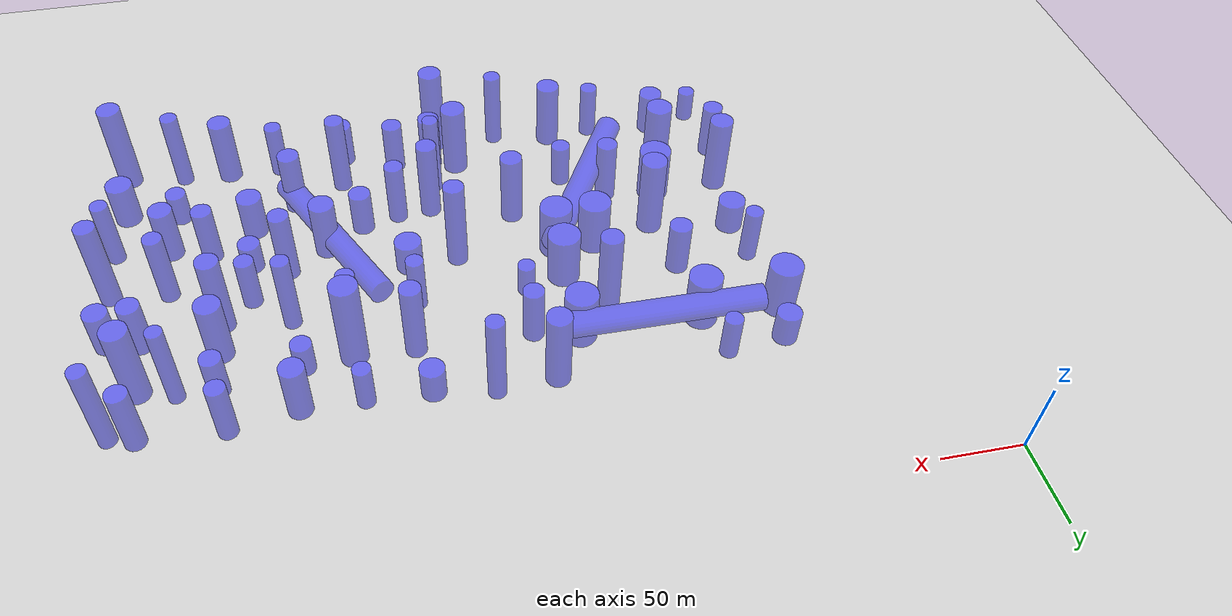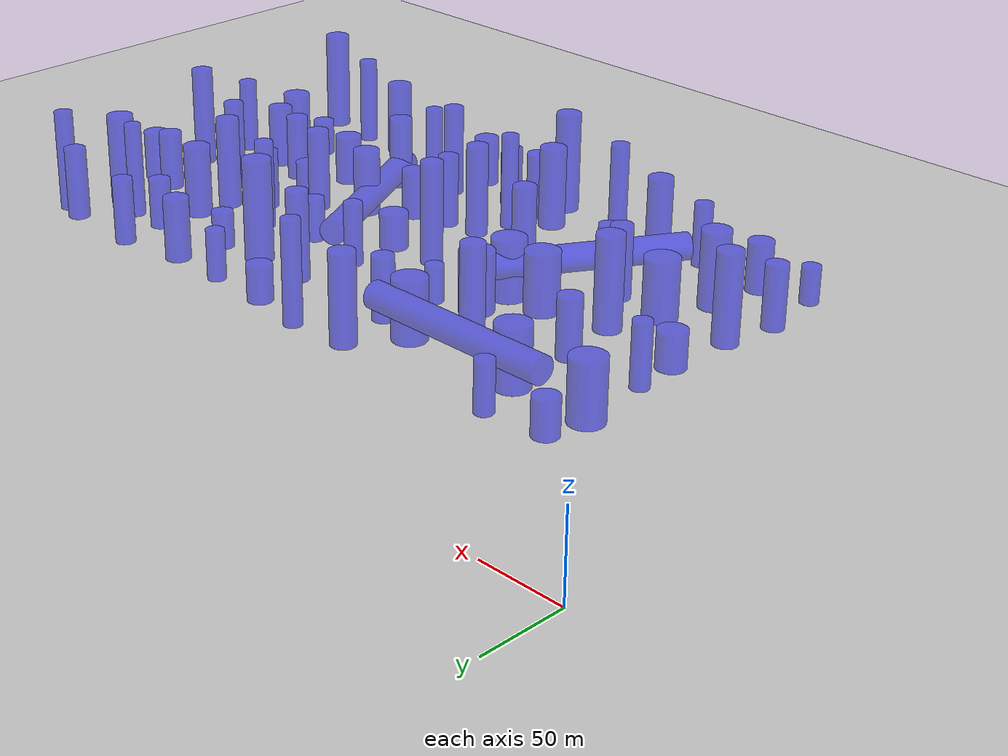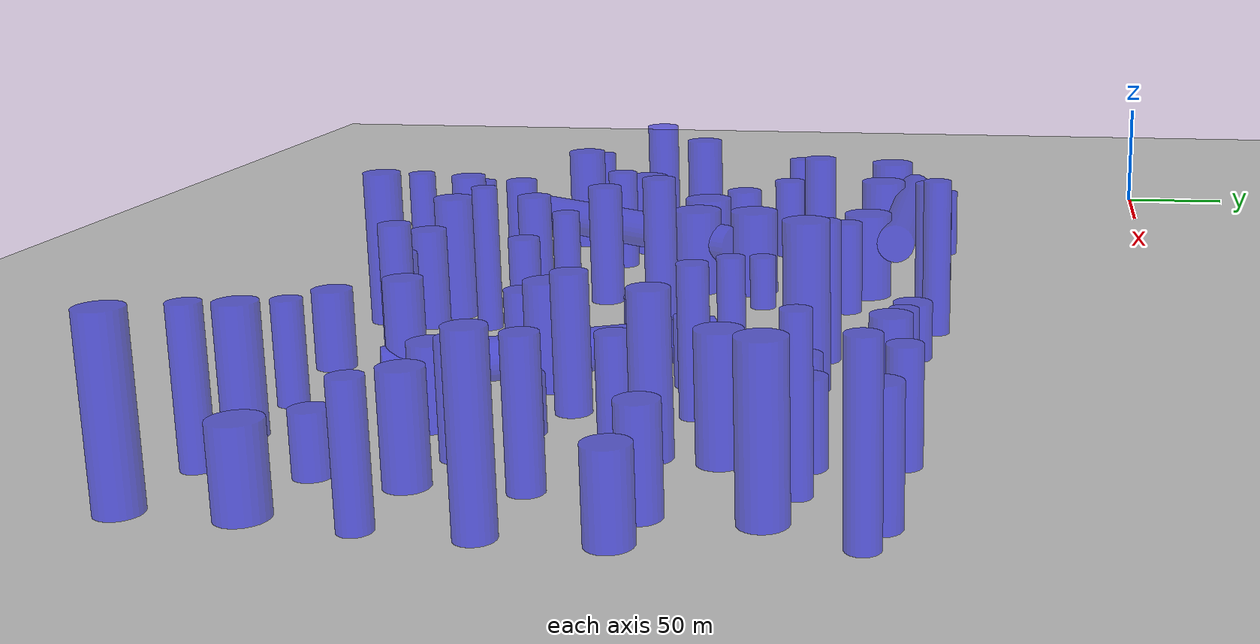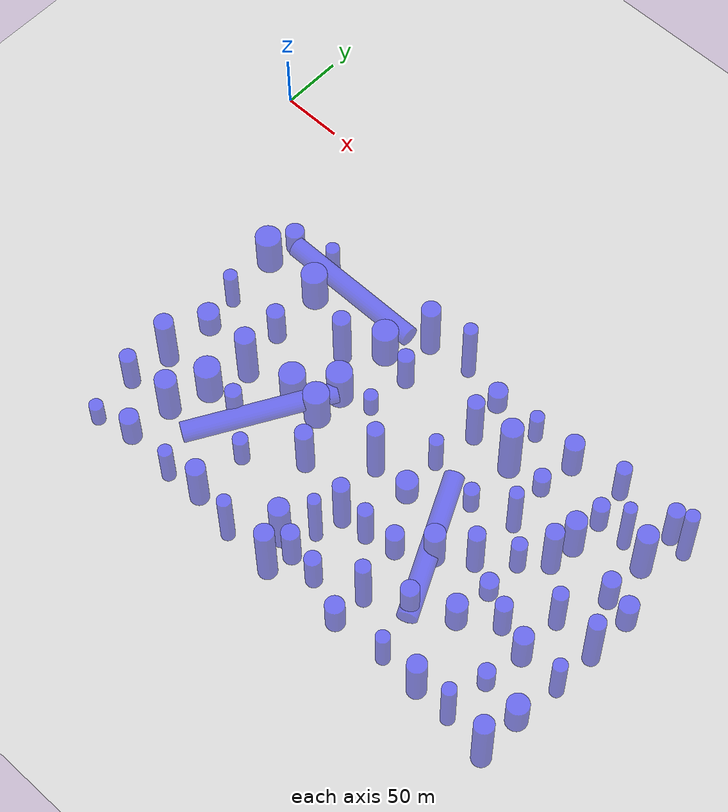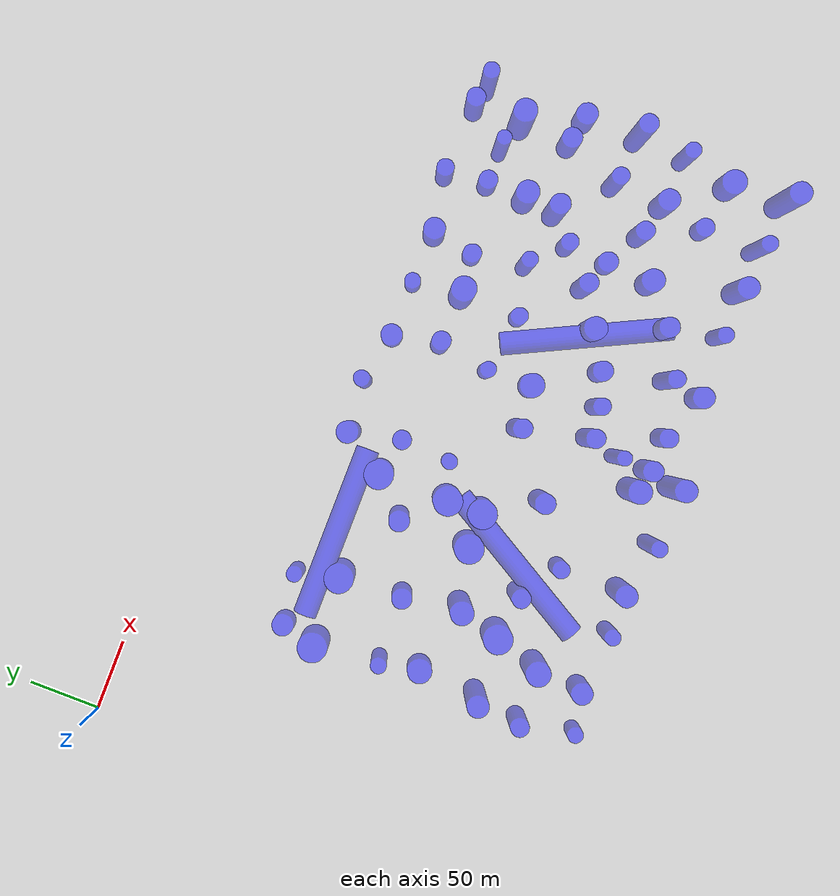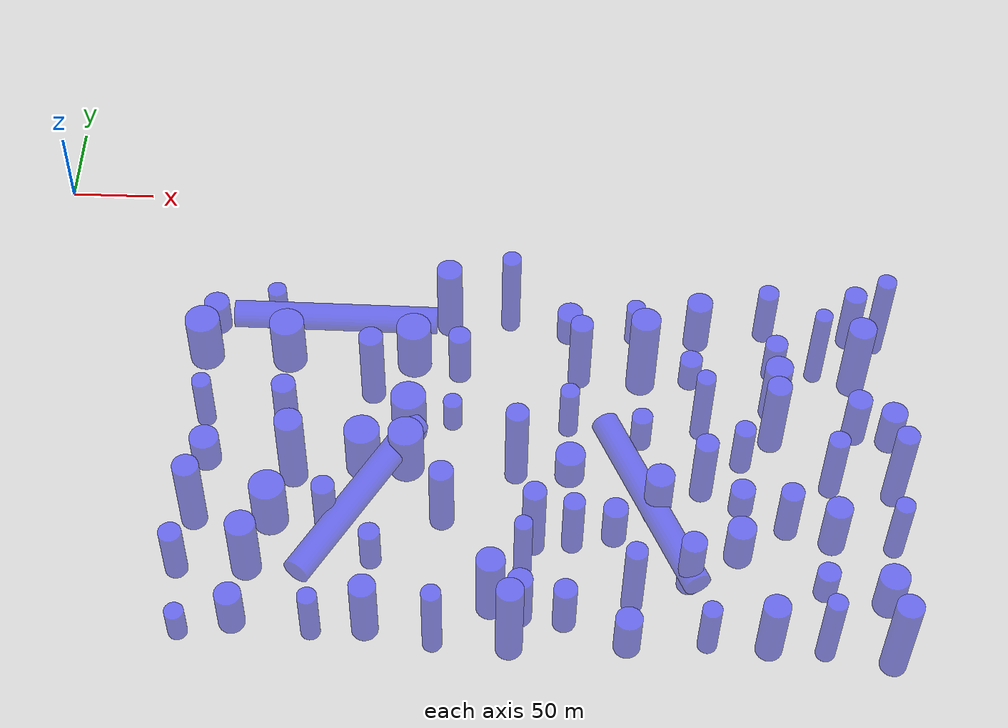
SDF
<sdf version="1.6">
 <world name="default">
  <model name="ground_plane">
   <static>1</static>
   <link name="link">
    <collision name="collision">
     <geometry><plane><normal>0 0 1</normal><size>1400.0 1400.0</size></plane></geometry>
     <surface><friction><ode><mu>100</mu><mu2>50</mu2></ode></friction></surface>
    </collision>
    <visual name="visual">
     <cast_shadows>0</cast_shadows>
     <geometry><plane><normal>0 0 1</normal><size>1400.0 1400.0</size></plane></geometry>
     <material>
      <script><uri>file://media/materials/scripts/gazebo.material</uri><name>Gazebo/Grey</name></script>
     </material>
    </visual>
   </link>
  </model>
  <model name="unit_cylinder_clone_2">
   <static>true</static>
   <pose>100.133 -125.017 18.13715 0 0 0</pose>
   <link name="link">
    <inertial>
     <mass>1</mass>
     <inertia><ixx>0.145833</ixx><ixy>0</ixy><ixz>0</ixz><iyy>0.145833</iyy><iyz>0</iyz><izz>0.125</izz></inertia>
    </inertial>
    <collision name="collision">
     <geometry><cylinder><radius>10.1458</radius><length>36.2743</length></cylinder></geometry>
    </collision>
    <visual name="visual">
     <geometry><cylinder><radius>10.1458</radius><length>36.2743</length></cylinder></geometry>
     <material><ambient>0 0 1 1</ambient><diffuse>0 0 1 1</diffuse></material>
     <transparency>0.5</transparency>
    </visual>
   </link>
  </model>
  <model name="unit_cylinder_clone_3_clone">
   <static>true</static>
   <pose>225.023 -125.025 18.13715 0 0 0</pose>
   <link name="link">
    <inertial>
     <mass>1</mass>
     <inertia><ixx>0.145833</ixx><ixy>0</ixy><ixz>0</ixz><iyy>0.145833</iyy><iyz>0</iyz><izz>0.125</izz></inertia>
    </inertial>
    <collision name="collision">
     <geometry><cylinder><radius>10.1458</radius><length>36.2743</length></cylinder></geometry>
    </collision>
    <visual name="visual">
     <geometry><cylinder><radius>10.1458</radius><length>36.2743</length></cylinder></geometry>
     <material><ambient>0 0 1 1</ambient><diffuse>0 0 1 1</diffuse></material>
     <transparency>0.5</transparency>
    </visual>
   </link>
  </model>
  <model name="unit_cylinder_clone_3_clone_0_clone">
   <static>true</static>
   <pose>150.023 -125.025 18.13715 0 0 0</pose>
   <link name="link">
    <inertial>
     <mass>1</mass>
     <inertia><ixx>0.145833</ixx><ixy>0</ixy><ixz>0</ixz><iyy>0.145833</iyy><iyz>0</iyz><izz>0.125</izz></inertia>
    </inertial>
    <collision name="collision">
     <geometry><cylinder><radius>10.1458</radius><length>36.2743</length></cylinder></geometry>
    </collision>
    <visual name="visual">
     <geometry><cylinder><radius>10.1458</radius><length>36.2743</length></cylinder></geometry>
     <material><ambient>0 0 1 1</ambient><diffuse>0 0 1 1</diffuse></material>
     <transparency>0.5</transparency>
    </visual>
   </link>
  </model>
  <model name="unit_cylinder_clone_3_clone_0_clone_0">
   <static>true</static>
   <pose>225.023 -200.025 18.13715 0 0 0</pose>
   <link name="link">
    <inertial>
     <mass>1</mass>
     <inertia><ixx>0.145833</ixx><ixy>0</ixy><ixz>0</ixz><iyy>0.145833</iyy><iyz>0</iyz><izz>0.125</izz></inertia>
    </inertial>
    <collision name="collision">
     <geometry><cylinder><radius>10.1458</radius><length>36.2743</length></cylinder></geometry>
    </collision>
    <visual name="visual">
     <geometry><cylinder><radius>10.1458</radius><length>36.2743</length></cylinder></geometry>
     <material><ambient>0 0 1 1</ambient><diffuse>0 0 1 1</diffuse></material>
     <transparency>0.5</transparency>
    </visual>
   </link>
  </model>
  <model name="unit_cylinder_clone_3_clone_0_clone_0_clone">
   <static>true</static>
   <pose>225.023 -175.025 18.13715 0 0 0</pose>
   <link name="link">
    <inertial>
     <mass>1</mass>
     <inertia><ixx>0.145833</ixx><ixy>0</ixy><ixz>0</ixz><iyy>0.145833</iyy><iyz>0</iyz><izz>0.125</izz></inertia>
    </inertial>
    <collision name="collision">
     <geometry><cylinder><radius>10.1458</radius><length>36.2743</length></cylinder></geometry>
    </collision>
    <visual name="visual">
     <geometry><cylinder><radius>10.1458</radius><length>36.2743</length></cylinder></geometry>
     <material><ambient>0 0 1 1</ambient><diffuse>0 0 1 1</diffuse></material>
     <transparency>0.5</transparency>
    </visual>
   </link>
  </model>
  <model name="unit_cylinder_clone_3_clone_0_clone_0_clone_clone">
   <static>true</static>
   <pose>200.023 -200.025 18.13715 0 0 0</pose>
   <link name="link">
    <inertial>
     <mass>1</mass>
     <inertia><ixx>0.145833</ixx><ixy>0</ixy><ixz>0</ixz><iyy>0.145833</iyy><iyz>0</iyz><izz>0.125</izz></inertia>
    </inertial>
    <collision name="collision">
     <geometry><cylinder><radius>10.1458</radius><length>36.2743</length></cylinder></geometry>
    </collision>
    <visual name="visual">
     <geometry><cylinder><radius>10.1458</radius><length>36.2743</length></cylinder></geometry>
     <material><ambient>0 0 1 1</ambient><diffuse>0 0 1 1</diffuse></material>
     <transparency>0.5</transparency>
    </visual>
   </link>
  </model>
  <model name="unit_cylinder_clone_3_clone_0_clone_1">
   <static>true</static>
   <pose>150.023 -240.025 18.13715 0 0 0</pose>
   <link name="link">
    <inertial>
     <mass>1</mass>
     <inertia><ixx>0.145833</ixx><ixy>0</ixy><ixz>0</ixz><iyy>0.145833</iyy><iyz>0</iyz><izz>0.125</izz></inertia>
    </inertial>
    <collision name="collision">
     <geometry><cylinder><radius>10.1458</radius><length>36.2743</length></cylinder></geometry>
    </collision>
    <visual name="visual">
     <geometry><cylinder><radius>10.1458</radius><length>36.2743</length></cylinder></geometry>
     <material><ambient>0 0 1 1</ambient><diffuse>0 0 1 1</diffuse></material>
     <transparency>0.5</transparency>
    </visual>
   </link>
  </model>
  <model name="static_obs22">
   <static>true</static>
   <pose>202.16 -148.57 28.0 0 0 0</pose>
   <link name="link">
    <gravity>false</gravity>
    <collision name="collision">
     <geometry><cylinder><radius>7.0</radius><length>56.0</length></cylinder></geometry>
    </collision>
    <visual name="visual">
     <geometry><cylinder><radius>7.0</radius><length>56.0</length></cylinder></geometry>
     <material><ambient>0 0 1 1</ambient><diffuse>0 0 1 1</diffuse></material>
     <transparency>0.5</transparency>
    </visual>
   </link>
  </model>
  <model name="static_obs23">
   <static>true</static>
   <pose>152.5 -169.68 18.0 0 0 0</pose>
   <link name="link">
    <gravity>false</gravity>
    <collision name="collision">
     <geometry><cylinder><radius>7.0</radius><length>36.0</length></cylinder></geometry>
    </collision>
    <visual name="visual">
     <geometry><cylinder><radius>7.0</radius><length>36.0</length></cylinder></geometry>
     <material><ambient>0 0 1 1</ambient><diffuse>0 0 1 1</diffuse></material>
     <transparency>0.5</transparency>
    </visual>
   </link>
  </model>
  <model name="static_obs24">
   <static>true</static>
   <pose>160.38 -209.07 28.0 0 0 0</pose>
   <link name="link">
    <gravity>false</gravity>
    <collision name="collision">
     <geometry><cylinder><radius>8.0</radius><length>56.0</length></cylinder></geometry>
    </collision>
    <visual name="visual">
     <geometry><cylinder><radius>8.0</radius><length>56.0</length></cylinder></geometry>
     <material><ambient>0 0 1 1</ambient><diffuse>0 0 1 1</diffuse></material>
     <transparency>0.5</transparency>
    </visual>
   </link>
  </model>
  <model name="static_obs25">
   <static>true</static>
   <pose>182.15 -243.8 22.0 0 0 0</pose>
   <link name="link">
    <gravity>false</gravity>
    <collision name="collision">
     <geometry><cylinder><radius>6.5</radius><length>44.0</length></cylinder></geometry>
    </collision>
    <visual name="visual">
     <geometry><cylinder><radius>6.5</radius><length>44.0</length></cylinder></geometry>
     <material><ambient>0 0 1 1</ambient><diffuse>0 0 1 1</diffuse></material>
     <transparency>0.5</transparency>
    </visual>
   </link>
  </model>
  <model name="static_obs26">
   <static>true</static>
   <pose>208.76 -263.97 15.0 0 0 0</pose>
   <link name="link">
    <gravity>false</gravity>
    <collision name="collision">
     <geometry><cylinder><radius>6.0</radius><length>30.0</length></cylinder></geometry>
    </collision>
    <visual name="visual">
     <geometry><cylinder><radius>6.0</radius><length>30.0</length></cylinder></geometry>
     <material><ambient>0 0 1 1</ambient><diffuse>0 0 1 1</diffuse></material>
     <transparency>0.5</transparency>
    </visual>
   </link>
  </model>
  <model name="static_obs27">
   <static>true</static>
   <pose>247.28 -235.31 25.0 0 0 0</pose>
   <link name="link">
    <gravity>false</gravity>
    <collision name="collision">
     <geometry><cylinder><radius>7.0</radius><length>50.0</length></cylinder></geometry>
    </collision>
    <visual name="visual">
     <geometry><cylinder><radius>7.0</radius><length>50.0</length></cylinder></geometry>
     <material><ambient>0 0 1 1</ambient><diffuse>0 0 1 1</diffuse></material>
     <transparency>0.5</transparency>
    </visual>
   </link>
  </model>
  <model name="static_obs28">
   <static>true</static>
   <pose>293.27 -296.57 20.0 0 0 0</pose>
   <link name="link">
    <gravity>false</gravity>
    <collision name="collision">
     <geometry><cylinder><radius>7.0</radius><length>40.0</length></cylinder></geometry>
    </collision>
    <visual name="visual">
     <geometry><cylinder><radius>7.0</radius><length>40.0</length></cylinder></geometry>
     <material><ambient>0 0 1 1</ambient><diffuse>0 0 1 1</diffuse></material>
     <transparency>0.5</transparency>
    </visual>
   </link>
  </model>
  <model name="static_obs29">
   <static>true</static>
   <pose>276.98 -291.29 25.0 0 0 0</pose>
   <link name="link">
    <gravity>false</gravity>
    <collision name="collision">
     <geometry><cylinder><radius>8.0</radius><length>50.0</length></cylinder></geometry>
    </collision>
    <visual name="visual">
     <geometry><cylinder><radius>8.0</radius><length>50.0</length></cylinder></geometry>
     <material><ambient>0 0 1 1</ambient><diffuse>0 0 1 1</diffuse></material>
     <transparency>0.5</transparency>
    </visual>
   </link>
  </model>
  <model name="static_obs30">
   <static>true</static>
   <pose>299.46 -250.24 28.0 0 0 0</pose>
   <link name="link">
    <gravity>false</gravity>
    <collision name="collision">
     <geometry><cylinder><radius>6.5</radius><length>56.0</length></cylinder></geometry>
    </collision>
    <visual name="visual">
     <geometry><cylinder><radius>6.5</radius><length>56.0</length></cylinder></geometry>
     <material><ambient>0 0 1 1</ambient><diffuse>0 0 1 1</diffuse></material>
     <transparency>0.5</transparency>
    </visual>
   </link>
  </model>
  <model name="static_obs31">
   <static>true</static>
   <pose>318.0 -299.13 18.0 0 0 0</pose>
   <link name="link">
    <gravity>false</gravity>
    <collision name="collision">
     <geometry><cylinder><radius>6.5</radius><length>36.0</length></cylinder></geometry>
    </collision>
    <visual name="visual">
     <geometry><cylinder><radius>6.5</radius><length>36.0</length></cylinder></geometry>
     <material><ambient>0 0 1 1</ambient><diffuse>0 0 1 1</diffuse></material>
     <transparency>0.5</transparency>
    </visual>
   </link>
  </model>
  <model name="static_obs32">
   <static>true</static>
   <pose>321.46 -248.19 22.0 0 0 0</pose>
   <link name="link">
    <gravity>false</gravity>
    <collision name="collision">
     <geometry><cylinder><radius>6.0</radius><length>44.0</length></cylinder></geometry>
    </collision>
    <visual name="visual">
     <geometry><cylinder><radius>6.0</radius><length>44.0</length></cylinder></geometry>
     <material><ambient>0 0 1 1</ambient><diffuse>0 0 1 1</diffuse></material>
     <transparency>0.5</transparency>
    </visual>
   </link>
  </model>
  <model name="static_obs33">
   <static>true</static>
   <pose>355.22 -285.95 28.0 0 0 0</pose>
   <link name="link">
    <gravity>false</gravity>
    <collision name="collision">
     <geometry><cylinder><radius>6.0</radius><length>56.0</length></cylinder></geometry>
    </collision>
    <visual name="visual">
     <geometry><cylinder><radius>6.0</radius><length>56.0</length></cylinder></geometry>
     <material><ambient>0 0 1 1</ambient><diffuse>0 0 1 1</diffuse></material>
     <transparency>0.5</transparency>
    </visual>
   </link>
  </model>
  <model name="static_obs34">
   <static>true</static>
   <pose>345.01 -242.19 15.0 0 0 0</pose>
   <link name="link">
    <gravity>false</gravity>
    <collision name="collision">
     <geometry><cylinder><radius>7.0</radius><length>30.0</length></cylinder></geometry>
    </collision>
    <visual name="visual">
     <geometry><cylinder><radius>7.0</radius><length>30.0</length></cylinder></geometry>
     <material><ambient>0 0 1 1</ambient><diffuse>0 0 1 1</diffuse></material>
     <transparency>0.5</transparency>
    </visual>
   </link>
  </model>
  <model name="static_obs35">
   <static>true</static>
   <pose>387.07 -271.34 22.0 0 0 0</pose>
   <link name="link">
    <gravity>false</gravity>
    <collision name="collision">
     <geometry><cylinder><radius>7.0</radius><length>44.0</length></cylinder></geometry>
    </collision>
    <visual name="visual">
     <geometry><cylinder><radius>7.0</radius><length>44.0</length></cylinder></geometry>
     <material><ambient>0 0 1 1</ambient><diffuse>0 0 1 1</diffuse></material>
     <transparency>0.5</transparency>
    </visual>
   </link>
  </model>
  <model name="static_obs36">
   <static>true</static>
   <pose>369.22 -225.98 20.0 0 0 0</pose>
   <link name="link">
    <gravity>false</gravity>
    <collision name="collision">
     <geometry><cylinder><radius>8.0</radius><length>40.0</length></cylinder></geometry>
    </collision>
    <visual name="visual">
     <geometry><cylinder><radius>8.0</radius><length>40.0</length></cylinder></geometry>
     <material><ambient>0 0 1 1</ambient><diffuse>0 0 1 1</diffuse></material>
     <transparency>0.5</transparency>
    </visual>
   </link>
  </model>
  <model name="static_obs37">
   <static>true</static>
   <pose>414.82 -252.03 15.0 0 0 0</pose>
   <link name="link">
    <gravity>false</gravity>
    <collision name="collision">
     <geometry><cylinder><radius>8.0</radius><length>30.0</length></cylinder></geometry>
    </collision>
    <visual name="visual">
     <geometry><cylinder><radius>8.0</radius><length>30.0</length></cylinder></geometry>
     <material><ambient>0 0 1 1</ambient><diffuse>0 0 1 1</diffuse></material>
     <transparency>0.5</transparency>
    </visual>
   </link>
  </model>
  <model name="static_obs38">
   <static>true</static>
   <pose>394.7 -209.81 25.0 0 0 0</pose>
   <link name="link">
    <gravity>false</gravity>
    <collision name="collision">
     <geometry><cylinder><radius>6.5</radius><length>50.0</length></cylinder></geometry>
    </collision>
    <visual name="visual">
     <geometry><cylinder><radius>6.5</radius><length>50.0</length></cylinder></geometry>
     <material><ambient>0 0 1 1</ambient><diffuse>0 0 1 1</diffuse></material>
     <transparency>0.5</transparency>
    </visual>
   </link>
  </model>
  <model name="static_obs39">
   <static>true</static>
   <pose>442.42 -233.61 20.0 0 0 0</pose>
   <link name="link">
    <gravity>false</gravity>
    <collision name="collision">
     <geometry><cylinder><radius>6.5</radius><length>40.0</length></cylinder></geometry>
    </collision>
    <visual name="visual">
     <geometry><cylinder><radius>6.5</radius><length>40.0</length></cylinder></geometry>
     <material><ambient>0 0 1 1</ambient><diffuse>0 0 1 1</diffuse></material>
     <transparency>0.5</transparency>
    </visual>
   </link>
  </model>
  <model name="static_obs40">
   <static>true</static>
   <pose>417.9 -189.31 18.0 0 0 0</pose>
   <link name="link">
    <gravity>false</gravity>
    <collision name="collision">
     <geometry><cylinder><radius>6.0</radius><length>36.0</length></cylinder></geometry>
    </collision>
    <visual name="visual">
     <geometry><cylinder><radius>6.0</radius><length>36.0</length></cylinder></geometry>
     <material><ambient>0 0 1 1</ambient><diffuse>0 0 1 1</diffuse></material>
     <transparency>0.5</transparency>
    </visual>
   </link>
  </model>
  <model name="static_obs41">
   <static>true</static>
   <pose>468.5 -204.1 25.0 0 0 0</pose>
   <link name="link">
    <gravity>false</gravity>
    <collision name="collision">
     <geometry><cylinder><radius>6.0</radius><length>50.0</length></cylinder></geometry>
    </collision>
    <visual name="visual">
     <geometry><cylinder><radius>6.0</radius><length>50.0</length></cylinder></geometry>
     <material><ambient>0 0 1 1</ambient><diffuse>0 0 1 1</diffuse></material>
     <transparency>0.5</transparency>
    </visual>
   </link>
  </model>
  <model name="static_obs42">
   <static>true</static>
   <pose>435.59 -172.95 28.0 0 0 0</pose>
   <link name="link">
    <gravity>false</gravity>
    <collision name="collision">
     <geometry><cylinder><radius>7.0</radius><length>56.0</length></cylinder></geometry>
    </collision>
    <visual name="visual">
     <geometry><cylinder><radius>7.0</radius><length>56.0</length></cylinder></geometry>
     <material><ambient>0 0 1 1</ambient><diffuse>0 0 1 1</diffuse></material>
     <transparency>0.5</transparency>
    </visual>
   </link>
  </model>
  <model name="static_obs43">
   <static>true</static>
   <pose>484.16 -165.52 18.0 0 0 0</pose>
   <link name="link">
    <gravity>false</gravity>
    <collision name="collision">
     <geometry><cylinder><radius>7.0</radius><length>36.0</length></cylinder></geometry>
    </collision>
    <visual name="visual">
     <geometry><cylinder><radius>7.0</radius><length>36.0</length></cylinder></geometry>
     <material><ambient>0 0 1 1</ambient><diffuse>0 0 1 1</diffuse></material>
     <transparency>0.5</transparency>
    </visual>
   </link>
  </model>
  <model name="static_obs44">
   <static>true</static>
   <pose>437.6 -150.53 22.0 0 0 0</pose>
   <link name="link">
    <gravity>false</gravity>
    <collision name="collision">
     <geometry><cylinder><radius>8.0</radius><length>44.0</length></cylinder></geometry>
    </collision>
    <visual name="visual">
     <geometry><cylinder><radius>8.0</radius><length>44.0</length></cylinder></geometry>
     <material><ambient>0 0 1 1</ambient><diffuse>0 0 1 1</diffuse></material>
     <transparency>0.5</transparency>
    </visual>
   </link>
  </model>
  <model name="static_obs45">
   <static>true</static>
   <pose>484.92 -129.44 28.0 0 0 0</pose>
   <link name="link">
    <gravity>false</gravity>
    <collision name="collision">
     <geometry><cylinder><radius>8.0</radius><length>56.0</length></cylinder></geometry>
    </collision>
    <visual name="visual">
     <geometry><cylinder><radius>8.0</radius><length>56.0</length></cylinder></geometry>
     <material><ambient>0 0 1 1</ambient><diffuse>0 0 1 1</diffuse></material>
     <transparency>0.5</transparency>
    </visual>
   </link>
  </model>
  <model name="static_obs46">
   <static>true</static>
   <pose>438.62 -122.71 15.0 0 0 0</pose>
   <link name="link">
    <gravity>false</gravity>
    <collision name="collision">
     <geometry><cylinder><radius>6.5</radius><length>30.0</length></cylinder></geometry>
    </collision>
    <visual name="visual">
     <geometry><cylinder><radius>6.5</radius><length>30.0</length></cylinder></geometry>
     <material><ambient>0 0 1 1</ambient><diffuse>0 0 1 1</diffuse></material>
     <transparency>0.5</transparency>
    </visual>
   </link>
  </model>
  <model name="static_obs47">
   <static>true</static>
   <pose>484.56 -95.44 22.0 0 0 0</pose>
   <link name="link">
    <gravity>false</gravity>
    <collision name="collision">
     <geometry><cylinder><radius>6.5</radius><length>44.0</length></cylinder></geometry>
    </collision>
    <visual name="visual">
     <geometry><cylinder><radius>6.5</radius><length>44.0</length></cylinder></geometry>
     <material><ambient>0 0 1 1</ambient><diffuse>0 0 1 1</diffuse></material>
     <transparency>0.5</transparency>
    </visual>
   </link>
  </model>
  <model name="static_obs48">
   <static>true</static>
   <pose>433.92 -92.92 20.0 0 0 0</pose>
   <link name="link">
    <gravity>false</gravity>
    <collision name="collision">
     <geometry><cylinder><radius>6.0</radius><length>40.0</length></cylinder></geometry>
    </collision>
    <visual name="visual">
     <geometry><cylinder><radius>6.0</radius><length>40.0</length></cylinder></geometry>
     <material><ambient>0 0 1 1</ambient><diffuse>0 0 1 1</diffuse></material>
     <transparency>0.5</transparency>
    </visual>
   </link>
  </model>
  <model name="static_obs101">
   <static>true</static>
   <pose>106.15 -314.66 11.0 0 0 0</pose>
   <link name="link">
    <gravity>false</gravity>
    <collision name="collision">
     <geometry><cylinder><radius>5.5</radius><length>22.0</length></cylinder></geometry>
    </collision>
    <visual name="visual">
     <geometry><cylinder><radius>5.5</radius><length>22.0</length></cylinder></geometry>
     <material><ambient>0 0 1 1</ambient><diffuse>0 0 1 1</diffuse></material>
     <transparency>0.5</transparency>
    </visual>
   </link>
  </model>
  <model name="static_obs102">
   <static>true</static>
   <pose>135.25 -307.26 15.0 0 0 0</pose>
   <link name="link">
    <gravity>false</gravity>
    <collision name="collision">
     <geometry><cylinder><radius>7.5</radius><length>30.0</length></cylinder></geometry>
    </collision>
    <visual name="visual">
     <geometry><cylinder><radius>7.5</radius><length>30.0</length></cylinder></geometry>
     <material><ambient>0 0 1 1</ambient><diffuse>0 0 1 1</diffuse></material>
     <transparency>0.5</transparency>
    </visual>
   </link>
  </model>
  <model name="static_obs103">
   <static>true</static>
   <pose>179.17 -311.32 19.0 0 0 0</pose>
   <link name="link">
    <gravity>false</gravity>
    <collision name="collision">
     <geometry><cylinder><radius>5.5</radius><length>38.0</length></cylinder></geometry>
    </collision>
    <visual name="visual">
     <geometry><cylinder><radius>5.5</radius><length>38.0</length></cylinder></geometry>
     <material><ambient>0 0 1 1</ambient><diffuse>0 0 1 1</diffuse></material>
     <transparency>0.5</transparency>
    </visual>
   </link>
  </model>
  <model name="static_obs104">
   <static>true</static>
   <pose>208.9 -308.46 23.0 0 0 0</pose>
   <link name="link">
    <gravity>false</gravity>
    <collision name="collision">
     <geometry><cylinder><radius>7.5</radius><length>46.0</length></cylinder></geometry>
    </collision>
    <visual name="visual">
     <geometry><cylinder><radius>7.5</radius><length>46.0</length></cylinder></geometry>
     <material><ambient>0 0 1 1</ambient><diffuse>0 0 1 1</diffuse></material>
     <transparency>0.5</transparency>
    </visual>
   </link>
  </model>
  <model name="static_obs105">
   <static>true</static>
   <pose>246.34 -315.82 27.0 0 0 0</pose>
   <link name="link">
    <gravity>false</gravity>
    <collision name="collision">
     <geometry><cylinder><radius>5.5</radius><length>54.0</length></cylinder></geometry>
    </collision>
    <visual name="visual">
     <geometry><cylinder><radius>5.5</radius><length>54.0</length></cylinder></geometry>
     <material><ambient>0 0 1 1</ambient><diffuse>0 0 1 1</diffuse></material>
     <transparency>0.5</transparency>
    </visual>
   </link>
  </model>
  <model name="static_obs106">
   <static>true</static>
   <pose>288.28 -316.75 31.0 0 0 0</pose>
   <link name="link">
    <gravity>false</gravity>
    <collision name="collision">
     <geometry><cylinder><radius>7.5</radius><length>62.0</length></cylinder></geometry>
    </collision>
    <visual name="visual">
     <geometry><cylinder><radius>7.5</radius><length>62.0</length></cylinder></geometry>
     <material><ambient>0 0 1 1</ambient><diffuse>0 0 1 1</diffuse></material>
     <transparency>0.5</transparency>
    </visual>
   </link>
  </model>
  <model name="static_obs107">
   <static>true</static>
   <pose>352.63 -312.57 15.0 0 0 0</pose>
   <link name="link">
    <gravity>false</gravity>
    <collision name="collision">
     <geometry><cylinder><radius>7.5</radius><length>30.0</length></cylinder></geometry>
    </collision>
    <visual name="visual">
     <geometry><cylinder><radius>7.5</radius><length>30.0</length></cylinder></geometry>
     <material><ambient>0 0 1 1</ambient><diffuse>0 0 1 1</diffuse></material>
     <transparency>0.5</transparency>
    </visual>
   </link>
  </model>
  <model name="static_obs108">
   <static>true</static>
   <pose>396.61 -309.53 19.0 0 0 0</pose>
   <link name="link">
    <gravity>false</gravity>
    <collision name="collision">
     <geometry><cylinder><radius>5.5</radius><length>38.0</length></cylinder></geometry>
    </collision>
    <visual name="visual">
     <geometry><cylinder><radius>5.5</radius><length>38.0</length></cylinder></geometry>
     <material><ambient>0 0 1 1</ambient><diffuse>0 0 1 1</diffuse></material>
     <transparency>0.5</transparency>
    </visual>
   </link>
  </model>
  <model name="static_obs109">
   <static>true</static>
   <pose>430.25 -310.73 23.0 0 0 0</pose>
   <link name="link">
    <gravity>false</gravity>
    <collision name="collision">
     <geometry><cylinder><radius>7.5</radius><length>46.0</length></cylinder></geometry>
    </collision>
    <visual name="visual">
     <geometry><cylinder><radius>7.5</radius><length>46.0</length></cylinder></geometry>
     <material><ambient>0 0 1 1</ambient><diffuse>0 0 1 1</diffuse></material>
     <transparency>0.5</transparency>
    </visual>
   </link>
  </model>
  <model name="static_obs110">
   <static>true</static>
   <pose>461.0 -311.6 27.0 0 0 0</pose>
   <link name="link">
    <gravity>false</gravity>
    <collision name="collision">
     <geometry><cylinder><radius>5.5</radius><length>54.0</length></cylinder></geometry>
    </collision>
    <visual name="visual">
     <geometry><cylinder><radius>5.5</radius><length>54.0</length></cylinder></geometry>
     <material><ambient>0 0 1 1</ambient><diffuse>0 0 1 1</diffuse></material>
     <transparency>0.5</transparency>
    </visual>
   </link>
  </model>
  <model name="static_obs111">
   <static>true</static>
   <pose>497.48 -316.98 31.0 0 0 0</pose>
   <link name="link">
    <gravity>false</gravity>
    <collision name="collision">
     <geometry><cylinder><radius>7.5</radius><length>62.0</length></cylinder></geometry>
    </collision>
    <visual name="visual">
     <geometry><cylinder><radius>7.5</radius><length>62.0</length></cylinder></geometry>
     <material><ambient>0 0 1 1</ambient><diffuse>0 0 1 1</diffuse></material>
     <transparency>0.5</transparency>
    </visual>
   </link>
  </model>
  <model name="static_obs118">
   <static>true</static>
   <pose>100.48 -274.54 19.0 0 0 0</pose>
   <link name="link">
    <gravity>false</gravity>
    <collision name="collision">
     <geometry><cylinder><radius>6.5</radius><length>38.0</length></cylinder></geometry>
    </collision>
    <visual name="visual">
     <geometry><cylinder><radius>6.5</radius><length>38.0</length></cylinder></geometry>
     <material><ambient>0 0 1 1</ambient><diffuse>0 0 1 1</diffuse></material>
     <transparency>0.5</transparency>
    </visual>
   </link>
  </model>
  <model name="static_obs119">
   <static>true</static>
   <pose>139.51 -272.08 23.0 0 0 0</pose>
   <link name="link">
    <gravity>false</gravity>
    <collision name="collision">
     <geometry><cylinder><radius>8.5</radius><length>46.0</length></cylinder></geometry>
    </collision>
    <visual name="visual">
     <geometry><cylinder><radius>8.5</radius><length>46.0</length></cylinder></geometry>
     <material><ambient>0 0 1 1</ambient><diffuse>0 0 1 1</diffuse></material>
     <transparency>0.5</transparency>
    </visual>
   </link>
  </model>
  <model name="static_obs120">
   <static>true</static>
   <pose>462.71 -273.32 11.0 0 0 0</pose>
   <link name="link">
    <gravity>false</gravity>
    <collision name="collision">
     <geometry><cylinder><radius>6.5</radius><length>22.0</length></cylinder></geometry>
    </collision>
    <visual name="visual">
     <geometry><cylinder><radius>6.5</radius><length>22.0</length></cylinder></geometry>
     <material><ambient>0 0 1 1</ambient><diffuse>0 0 1 1</diffuse></material>
     <transparency>0.5</transparency>
    </visual>
   </link>
  </model>
  <model name="static_obs121">
   <static>true</static>
   <pose>497.07 -279.58 15.0 0 0 0</pose>
   <link name="link">
    <gravity>false</gravity>
    <collision name="collision">
     <geometry><cylinder><radius>8.5</radius><length>30.0</length></cylinder></geometry>
    </collision>
    <visual name="visual">
     <geometry><cylinder><radius>8.5</radius><length>30.0</length></cylinder></geometry>
     <material><ambient>0 0 1 1</ambient><diffuse>0 0 1 1</diffuse></material>
     <transparency>0.5</transparency>
    </visual>
   </link>
  </model>
  <model name="static_obs127">
   <static>true</static>
   <pose>106.48 -241.13 27.0 0 0 0</pose>
   <link name="link">
    <gravity>false</gravity>
    <collision name="collision">
     <geometry><cylinder><radius>7.5</radius><length>54.0</length></cylinder></geometry>
    </collision>
    <visual name="visual">
     <geometry><cylinder><radius>7.5</radius><length>54.0</length></cylinder></geometry>
     <material><ambient>0 0 1 1</ambient><diffuse>0 0 1 1</diffuse></material>
     <transparency>0.5</transparency>
    </visual>
   </link>
  </model>
  <model name="static_obs128">
   <static>true</static>
   <pose>467.99 -241.39 19.0 0 0 0</pose>
   <link name="link">
    <gravity>false</gravity>
    <collision name="collision">
     <geometry><cylinder><radius>7.5</radius><length>38.0</length></cylinder></geometry>
    </collision>
    <visual name="visual">
     <geometry><cylinder><radius>7.5</radius><length>38.0</length></cylinder></geometry>
     <material><ambient>0 0 1 1</ambient><diffuse>0 0 1 1</diffuse></material>
     <transparency>0.5</transparency>
    </visual>
   </link>
  </model>
  <model name="static_obs129">
   <static>true</static>
   <pose>502.82 -243.39 23.0 0 0 0</pose>
   <link name="link">
    <gravity>false</gravity>
    <collision name="collision">
     <geometry><cylinder><radius>5.5</radius><length>46.0</length></cylinder></geometry>
    </collision>
    <visual name="visual">
     <geometry><cylinder><radius>5.5</radius><length>46.0</length></cylinder></geometry>
     <material><ambient>0 0 1 1</ambient><diffuse>0 0 1 1</diffuse></material>
     <transparency>0.5</transparency>
    </visual>
   </link>
  </model>
  <model name="static_obs134">
   <static>true</static>
   <pose>108.62 -199.42 11.0 0 0 0</pose>
   <link name="link">
    <gravity>false</gravity>
    <collision name="collision">
     <geometry><cylinder><radius>8.5</radius><length>22.0</length></cylinder></geometry>
    </collision>
    <visual name="visual">
     <geometry><cylinder><radius>8.5</radius><length>22.0</length></cylinder></geometry>
     <material><ambient>0 0 1 1</ambient><diffuse>0 0 1 1</diffuse></material>
     <transparency>0.5</transparency>
    </visual>
   </link>
  </model>
  <model name="static_obs135">
   <static>true</static>
   <pose>288.3 -202.39 31.0 0 0 0</pose>
   <link name="link">
    <gravity>false</gravity>
    <collision name="collision">
     <geometry><cylinder><radius>6.5</radius><length>62.0</length></cylinder></geometry>
    </collision>
    <visual name="visual">
     <geometry><cylinder><radius>6.5</radius><length>62.0</length></cylinder></geometry>
     <material><ambient>0 0 1 1</ambient><diffuse>0 0 1 1</diffuse></material>
     <transparency>0.5</transparency>
    </visual>
   </link>
  </model>
  <model name="static_obs136">
   <static>true</static>
   <pose>319.19 -201.49 11.0 0 0 0</pose>
   <link name="link">
    <gravity>false</gravity>
    <collision name="collision">
     <geometry><cylinder><radius>8.5</radius><length>22.0</length></cylinder></geometry>
    </collision>
    <visual name="visual">
     <geometry><cylinder><radius>8.5</radius><length>22.0</length></cylinder></geometry>
     <material><ambient>0 0 1 1</ambient><diffuse>0 0 1 1</diffuse></material>
     <transparency>0.5</transparency>
    </visual>
   </link>
  </model>
  <model name="static_obs137">
   <static>true</static>
   <pose>504.34 -207.89 31.0 0 0 0</pose>
   <link name="link">
    <gravity>false</gravity>
    <collision name="collision">
     <geometry><cylinder><radius>6.5</radius><length>62.0</length></cylinder></geometry>
    </collision>
    <visual name="visual">
     <geometry><cylinder><radius>6.5</radius><length>62.0</length></cylinder></geometry>
     <material><ambient>0 0 1 1</ambient><diffuse>0 0 1 1</diffuse></material>
     <transparency>0.5</transparency>
    </visual>
   </link>
  </model>
  <model name="static_obs143">
   <static>true</static>
   <pose>105.17 -170.91 19.0 0 0 0</pose>
   <link name="link">
    <gravity>false</gravity>
    <collision name="collision">
     <geometry><cylinder><radius>5.5</radius><length>38.0</length></cylinder></geometry>
    </collision>
    <visual name="visual">
     <geometry><cylinder><radius>5.5</radius><length>38.0</length></cylinder></geometry>
     <material><ambient>0 0 1 1</ambient><diffuse>0 0 1 1</diffuse></material>
     <transparency>0.5</transparency>
    </visual>
   </link>
  </model>
  <model name="static_obs144">
   <static>true</static>
   <pose>250.02 -167.3 11.0 0 0 0</pose>
   <link name="link">
    <gravity>false</gravity>
    <collision name="collision">
     <geometry><cylinder><radius>5.5</radius><length>22.0</length></cylinder></geometry>
    </collision>
    <visual name="visual">
     <geometry><cylinder><radius>5.5</radius><length>22.0</length></cylinder></geometry>
     <material><ambient>0 0 1 1</ambient><diffuse>0 0 1 1</diffuse></material>
     <transparency>0.5</transparency>
    </visual>
   </link>
  </model>
  <model name="static_obs145">
   <static>true</static>
   <pose>317.74 -168.54 19.0 0 0 0</pose>
   <link name="link">
    <gravity>false</gravity>
    <collision name="collision">
     <geometry><cylinder><radius>5.5</radius><length>38.0</length></cylinder></geometry>
    </collision>
    <visual name="visual">
     <geometry><cylinder><radius>5.5</radius><length>38.0</length></cylinder></geometry>
     <material><ambient>0 0 1 1</ambient><diffuse>0 0 1 1</diffuse></material>
     <transparency>0.5</transparency>
    </visual>
   </link>
  </model>
  <model name="static_obs146">
   <static>true</static>
   <pose>394.54 -167.39 27.0 0 0 0</pose>
   <link name="link">
    <gravity>false</gravity>
    <collision name="collision">
     <geometry><cylinder><radius>5.5</radius><length>54.0</length></cylinder></geometry>
    </collision>
    <visual name="visual">
     <geometry><cylinder><radius>5.5</radius><length>54.0</length></cylinder></geometry>
     <material><ambient>0 0 1 1</ambient><diffuse>0 0 1 1</diffuse></material>
     <transparency>0.5</transparency>
    </visual>
   </link>
  </model>
  <model name="static_obs147">
   <static>true</static>
   <pose>504.44 -169.44 15.0 0 0 0</pose>
   <link name="link">
    <gravity>false</gravity>
    <collision name="collision">
     <geometry><cylinder><radius>7.5</radius><length>30.0</length></cylinder></geometry>
    </collision>
    <visual name="visual">
     <geometry><cylinder><radius>7.5</radius><length>30.0</length></cylinder></geometry>
     <material><ambient>0 0 1 1</ambient><diffuse>0 0 1 1</diffuse></material>
     <transparency>0.5</transparency>
    </visual>
   </link>
  </model>
  <model name="static_obs153">
   <static>true</static>
   <pose>252.43 -131.36 19.0 0 0 0</pose>
   <link name="link">
    <gravity>false</gravity>
    <collision name="collision">
     <geometry><cylinder><radius>6.5</radius><length>38.0</length></cylinder></geometry>
    </collision>
    <visual name="visual">
     <geometry><cylinder><radius>6.5</radius><length>38.0</length></cylinder></geometry>
     <material><ambient>0 0 1 1</ambient><diffuse>0 0 1 1</diffuse></material>
     <transparency>0.5</transparency>
    </visual>
   </link>
  </model>
  <model name="static_obs154">
   <static>true</static>
   <pose>323.37 -132.05 27.0 0 0 0</pose>
   <link name="link">
    <gravity>false</gravity>
    <collision name="collision">
     <geometry><cylinder><radius>6.5</radius><length>54.0</length></cylinder></geometry>
    </collision>
    <visual name="visual">
     <geometry><cylinder><radius>6.5</radius><length>54.0</length></cylinder></geometry>
     <material><ambient>0 0 1 1</ambient><diffuse>0 0 1 1</diffuse></material>
     <transparency>0.5</transparency>
    </visual>
   </link>
  </model>
  <model name="static_obs155">
   <static>true</static>
   <pose>359.85 -133.63 31.0 0 0 0</pose>
   <link name="link">
    <gravity>false</gravity>
    <collision name="collision">
     <geometry><cylinder><radius>8.5</radius><length>62.0</length></cylinder></geometry>
    </collision>
    <visual name="visual">
     <geometry><cylinder><radius>8.5</radius><length>62.0</length></cylinder></geometry>
     <material><ambient>0 0 1 1</ambient><diffuse>0 0 1 1</diffuse></material>
     <transparency>0.5</transparency>
    </visual>
   </link>
  </model>
  <model name="static_obs156">
   <static>true</static>
   <pose>389.06 -130.49 11.0 0 0 0</pose>
   <link name="link">
    <gravity>false</gravity>
    <collision name="collision">
     <geometry><cylinder><radius>6.5</radius><length>22.0</length></cylinder></geometry>
    </collision>
    <visual name="visual">
     <geometry><cylinder><radius>6.5</radius><length>22.0</length></cylinder></geometry>
     <material><ambient>0 0 1 1</ambient><diffuse>0 0 1 1</diffuse></material>
     <transparency>0.5</transparency>
    </visual>
   </link>
  </model>
  <model name="static_obs160">
   <static>true</static>
   <pose>104.64 -100.61 11.0 0 0 0</pose>
   <link name="link">
    <gravity>false</gravity>
    <collision name="collision">
     <geometry><cylinder><radius>7.5</radius><length>22.0</length></cylinder></geometry>
    </collision>
    <visual name="visual">
     <geometry><cylinder><radius>7.5</radius><length>22.0</length></cylinder></geometry>
     <material><ambient>0 0 1 1</ambient><diffuse>0 0 1 1</diffuse></material>
     <transparency>0.5</transparency>
    </visual>
   </link>
  </model>
  <model name="static_obs161">
   <static>true</static>
   <pose>141.23 -95.76 15.0 0 0 0</pose>
   <link name="link">
    <gravity>false</gravity>
    <collision name="collision">
     <geometry><cylinder><radius>5.5</radius><length>30.0</length></cylinder></geometry>
    </collision>
    <visual name="visual">
     <geometry><cylinder><radius>5.5</radius><length>30.0</length></cylinder></geometry>
     <material><ambient>0 0 1 1</ambient><diffuse>0 0 1 1</diffuse></material>
     <transparency>0.5</transparency>
    </visual>
   </link>
  </model>
  <model name="static_obs162">
   <static>true</static>
   <pose>244.76 -95.58 27.0 0 0 0</pose>
   <link name="link">
    <gravity>false</gravity>
    <collision name="collision">
     <geometry><cylinder><radius>7.5</radius><length>54.0</length></cylinder></geometry>
    </collision>
    <visual name="visual">
     <geometry><cylinder><radius>7.5</radius><length>54.0</length></cylinder></geometry>
     <material><ambient>0 0 1 1</ambient><diffuse>0 0 1 1</diffuse></material>
     <transparency>0.5</transparency>
    </visual>
   </link>
  </model>
  <model name="static_obs163">
   <static>true</static>
   <pose>281.27 -91.98 31.0 0 0 0</pose>
   <link name="link">
    <gravity>false</gravity>
    <collision name="collision">
     <geometry><cylinder><radius>5.5</radius><length>62.0</length></cylinder></geometry>
    </collision>
    <visual name="visual">
     <geometry><cylinder><radius>5.5</radius><length>62.0</length></cylinder></geometry>
     <material><ambient>0 0 1 1</ambient><diffuse>0 0 1 1</diffuse></material>
     <transparency>0.5</transparency>
    </visual>
   </link>
  </model>
  <model name="static_obs164">
   <static>true</static>
   <pose>317.12 -98.85 11.0 0 0 0</pose>
   <link name="link">
    <gravity>false</gravity>
    <collision name="collision">
     <geometry><cylinder><radius>7.5</radius><length>22.0</length></cylinder></geometry>
    </collision>
    <visual name="visual">
     <geometry><cylinder><radius>7.5</radius><length>22.0</length></cylinder></geometry>
     <material><ambient>0 0 1 1</ambient><diffuse>0 0 1 1</diffuse></material>
     <transparency>0.5</transparency>
    </visual>
   </link>
  </model>
  <model name="static_obs165">
   <static>true</static>
   <pose>356.02 -99.31 15.0 0 0 0</pose>
   <link name="link">
    <gravity>false</gravity>
    <collision name="collision">
     <geometry><cylinder><radius>5.5</radius><length>30.0</length></cylinder></geometry>
    </collision>
    <visual name="visual">
     <geometry><cylinder><radius>5.5</radius><length>30.0</length></cylinder></geometry>
     <material><ambient>0 0 1 1</ambient><diffuse>0 0 1 1</diffuse></material>
     <transparency>0.5</transparency>
    </visual>
   </link>
  </model>
  <model name="static_obs166">
   <static>true</static>
   <pose>393.31 -100.71 19.0 0 0 0</pose>
   <link name="link">
    <gravity>false</gravity>
    <collision name="collision">
     <geometry><cylinder><radius>7.5</radius><length>38.0</length></cylinder></geometry>
    </collision>
    <visual name="visual">
     <geometry><cylinder><radius>7.5</radius><length>38.0</length></cylinder></geometry>
     <material><ambient>0 0 1 1</ambient><diffuse>0 0 1 1</diffuse></material>
     <transparency>0.5</transparency>
    </visual>
   </link>
  </model>
  <model name="static_obs167">
   <static>true</static>
   <pose>499.9 -99.19 31.0 0 0 0</pose>
   <link name="link">
    <gravity>false</gravity>
    <collision name="collision">
     <geometry><cylinder><radius>5.5</radius><length>62.0</length></cylinder></geometry>
    </collision>
    <visual name="visual">
     <geometry><cylinder><radius>5.5</radius><length>62.0</length></cylinder></geometry>
     <material><ambient>0 0 1 1</ambient><diffuse>0 0 1 1</diffuse></material>
     <transparency>0.5</transparency>
    </visual>
   </link>
  </model>
  <model name="static_obs225">
   <static>true</static>
   <pose>360.0 -176.0 13.0 0 0 0</pose>
   <link name="link">
    <gravity>false</gravity>
    <collision name="collision">
     <geometry><cylinder><radius>6.0</radius><length>26.0</length></cylinder></geometry>
    </collision>
    <visual name="visual">
     <geometry><cylinder><radius>6.0</radius><length>26.0</length></cylinder></geometry>
     <material><ambient>0 0 1 1</ambient><diffuse>0 0 1 1</diffuse></material>
     <transparency>0.5</transparency>
    </visual>
   </link>
  </model>
  <model name="static_obs227">
   <static>true</static>
   <pose>294.05 -272.25 29.0 0 0 0</pose>
   <link name="link">
    <gravity>false</gravity>
    <collision name="collision">
     <geometry><cylinder><radius>5.0</radius><length>58.0</length></cylinder></geometry>
    </collision>
    <visual name="visual">
     <geometry><cylinder><radius>5.0</radius><length>58.0</length></cylinder></geometry>
     <material><ambient>0 0 1 1</ambient><diffuse>0 0 1 1</diffuse></material>
     <transparency>0.5</transparency>
    </visual>
   </link>
  </model>
  <model name="static_obs228">
   <static>true</static>
   <pose>417.16 -219.84 10.25 0 0 0</pose>
   <link name="link">
    <gravity>false</gravity>
    <collision name="collision">
     <geometry><cylinder><radius>7.0</radius><length>20.5</length></cylinder></geometry>
    </collision>
    <visual name="visual">
     <geometry><cylinder><radius>7.0</radius><length>20.5</length></cylinder></geometry>
     <material><ambient>0 0 1 1</ambient><diffuse>0 0 1 1</diffuse></material>
     <transparency>0.5</transparency>
    </visual>
   </link>
  </model>
  <model name="static_obs229">
   <static>true</static>
   <pose>462.77 -122.73 29.0 0 0 0</pose>
   <link name="link">
    <gravity>false</gravity>
    <collision name="collision">
     <geometry><cylinder><radius>5.0</radius><length>58.0</length></cylinder></geometry>
    </collision>
    <visual name="visual">
     <geometry><cylinder><radius>5.0</radius><length>58.0</length></cylinder></geometry>
     <material><ambient>0 0 1 1</ambient><diffuse>0 0 1 1</diffuse></material>
     <transparency>0.5</transparency>
    </visual>
   </link>
  </model>
  <model name="horizontal_obs2">
   <static>true</static>
   <pose>178.0 -112.0 26.0 0 1.5707963267948966 0.0</pose>
   <link name="link">
    <gravity>false</gravity>
    <collision name="collision">
     <geometry><cylinder><radius>8.0</radius><length>120.0</length></cylinder></geometry>
    </collision>
    <visual name="visual">
     <geometry><cylinder><radius>8.0</radius><length>120.0</length></cylinder></geometry>
     <material><ambient>0 0 1 1</ambient><diffuse>0 0 1 1</diffuse></material>
     <transparency>0.5</transparency>
    </visual>
   </link>
  </model>
  <model name="horizontal_obs3">
   <static>true</static>
   <pose>200.0 -235.0 22.0 0 1.5707963267948966 1.0471975511965976</pose>
   <link name="link">
    <gravity>false</gravity>
    <collision name="collision">
     <geometry><cylinder><radius>8.0</radius><length>120.0</length></cylinder></geometry>
    </collision>
    <visual name="visual">
     <geometry><cylinder><radius>8.0</radius><length>120.0</length></cylinder></geometry>
     <material><ambient>0 0 1 1</ambient><diffuse>0 0 1 1</diffuse></material>
     <transparency>0.5</transparency>
    </visual>
   </link>
  </model>
  <model name="horizontal_obs4">
   <static>true</static>
   <pose>365.0 -225.0 12.0 0 1.5707963267948966 2.0245819323134224</pose>
   <link name="link">
    <gravity>false</gravity>
    <collision name="collision">
     <geometry><cylinder><radius>8.0</radius><length>120.0</length></cylinder></geometry>
    </collision>
    <visual name="visual">
     <geometry><cylinder><radius>8.0</radius><length>120.0</length></cylinder></geometry>
     <material><ambient>0 0 1 1</ambient><diffuse>0 0 1 1</diffuse></material>
     <transparency>0.5</transparency>
    </visual>
   </link>
  </model>
 </world>
</sdf>
